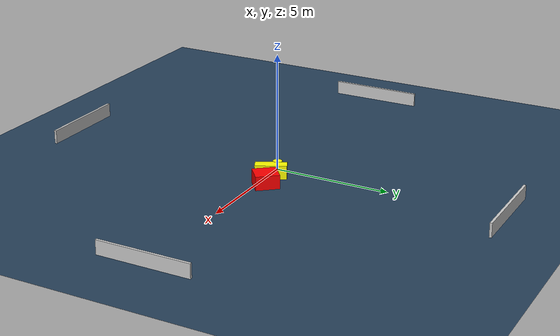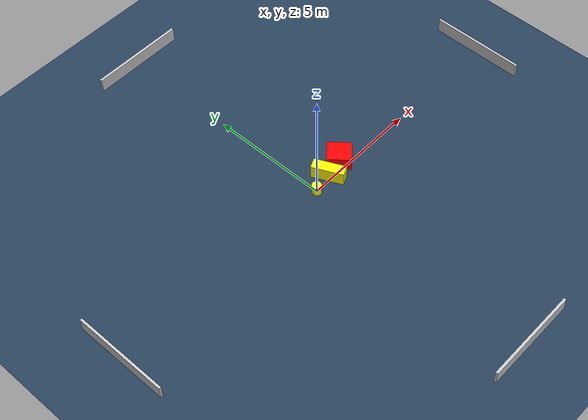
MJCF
<?xml version="1.0" ?>
<mujoco model="generated_environment">
  <option timestep="0.01" integrator="RK4" cone="elliptic"/>
  <default>
    <geom density="1"/>
  </default>
  <asset>
    <texture builtin="gradient" height="3072" name="skybox" rgb1="0.3 0.5 0.7" rgb2="0 0 0" type="skybox" width="512"/>
    <texture builtin="checker" height="300" name="groundplane" rgb1="0.2 0.3 0.4" rgb2="0.1 0.2 0.3" type="2d" width="300"/>
    <material name="groundplane" reflectance="0.2" texrepeat="5 5" texture="groundplane"/>
  </asset>
  <worldbody>
    <light dir="0 0 -1" directional="true" pos="0 0 1.5"/>
    <geom condim="3" friction="0.5 0.005 0.001" material="groundplane" name="floor" pos="0 0 0" size="0 0 0.05" type="plane"/>
    <body name="walls">
      <geom name="wall_1" condim="4" pos="-10.0 0.0 0.3" rgba="0.800000011920929 0.800000011920929 0.800000011920929 1.0" size="0.05 2.0 0.3" type="box"/>
      <geom name="wall_2" condim="4" pos="10.0 0.0 0.3" rgba="0.800000011920929 0.800000011920929 0.800000011920929 1.0" size="0.05 2.0 0.3" type="box"/>
      <geom name="wall_3" condim="4" pos="0.0 -10.0 0.3" rgba="0.800000011920929 0.800000011920929 0.800000011920929 1.0" size="2.0 0.05 0.3" type="box"/>
      <geom name="wall_4" condim="4" pos="0.0 10.0 0.3" rgba="0.800000011920929 0.800000011920929 0.800000011920929 1.0" size="2.0 0.05 0.3" type="box"/>
    </body>
    <body name="robot">
      <joint name="joint_x" type="slide" pos="0 0 0" axis="1 0 0"/>
      <joint name="joint_y" type="slide" pos="0 0 0" axis="0 1 0"/>
      <geom name="robot" type="cylinder" pos="0.0 0.0 0.2" size="0.2 0.2 0.0" mass="5.0" friction="1.0 0.005 0.0001" condim="4" rgba="1.0 1.0 0.0 1.0"/>
    </body>
    <body name="obstacle_1_movable">
      <geom name="obstacle_1_movable" condim="4" pos="0.8569601983442556 0.15130450362666145 0.3" euler="0 0 24.947641318543674" friction="0.0 0.005 0.001" rgba="1.0 1.0 0.0 1.0" size="0.22516424768979781 0.6640368261263965 0.3" type="box" mass="0.1"/>
      <joint type="free"/>
    </body>
    <body name="obstacle_2_static">
      <geom name="obstacle_2_static" condim="4" pos="1.711240369141139 0.373480473633515 0.3" euler="0 0 39.67426109146621" friction="0.0 0.005 0.001" rgba="1.0 0.0 0.0 1.0" size="0.44577945494311644 0.4978279936790118 0.3" type="box"/>
    </body>
  </worldbody>
  <actuator>
    <motor name="actuator_x" joint="joint_x" gear="1" ctrlrange="-1 1"/>
    <motor name="actuator_y" joint="joint_y" gear="1" ctrlrange="-1 1"/>
  </actuator>
</mujoco>
